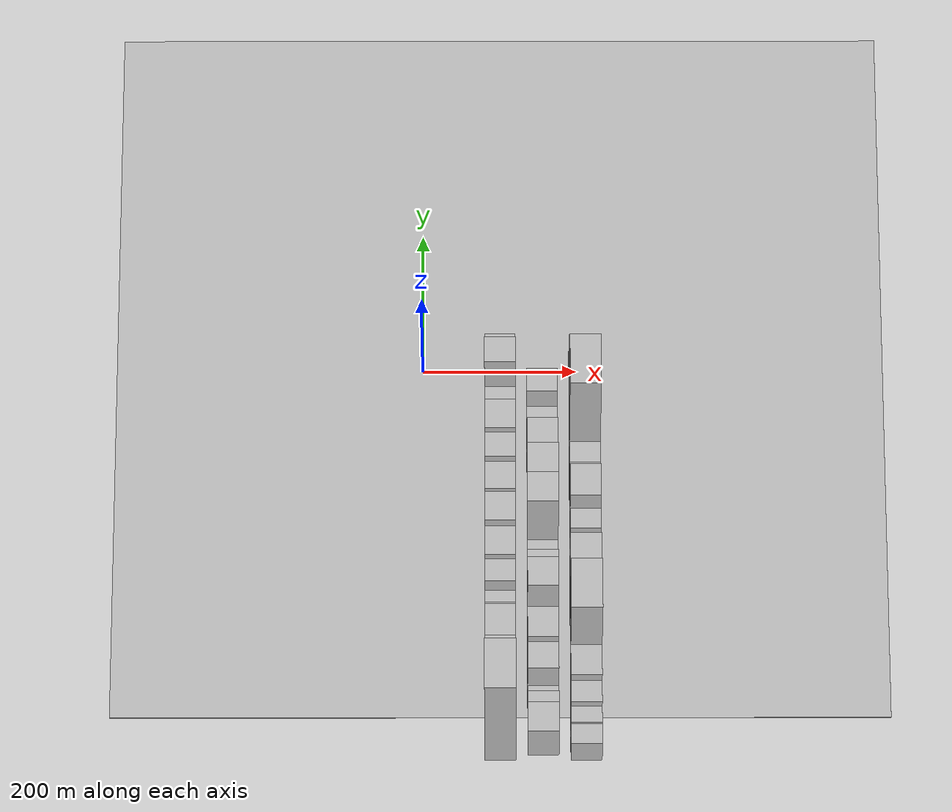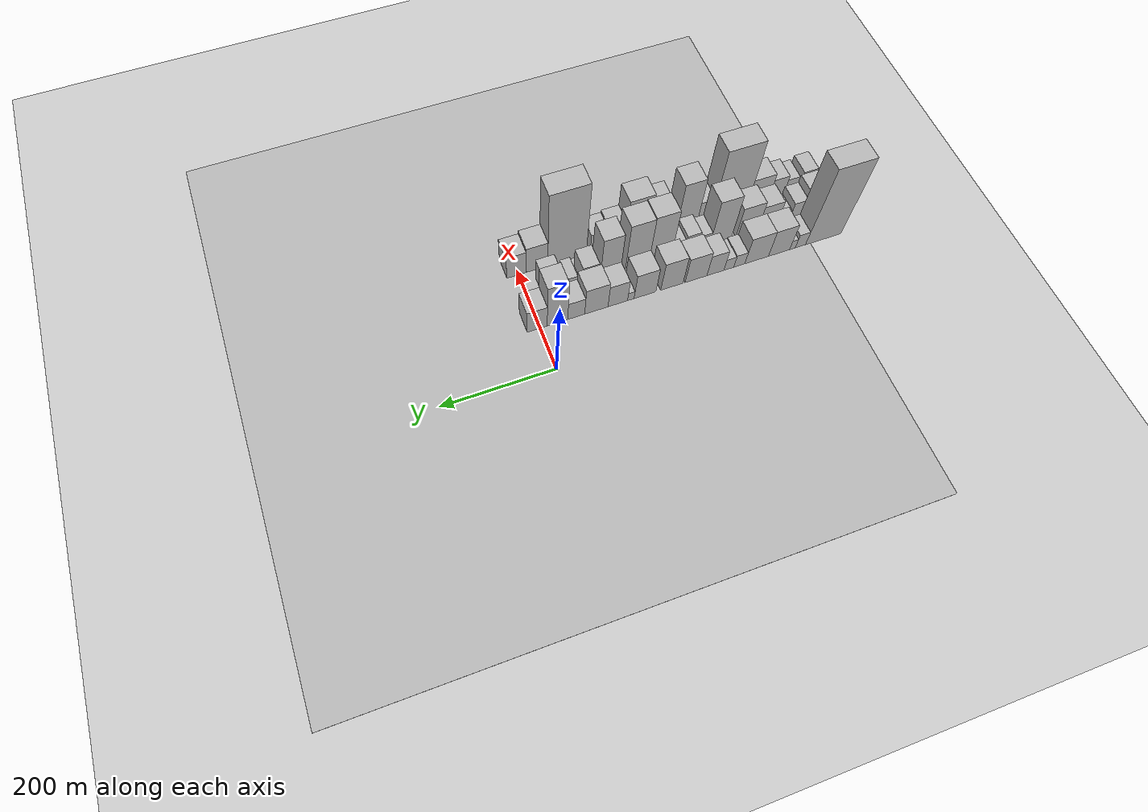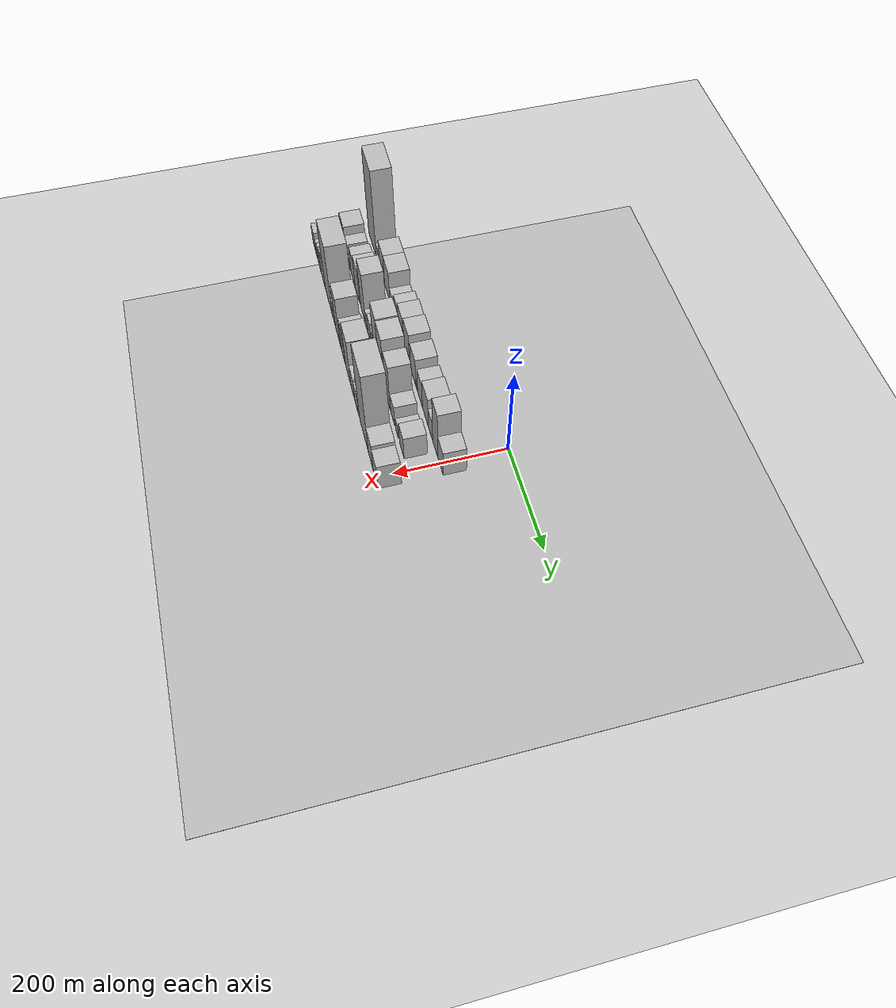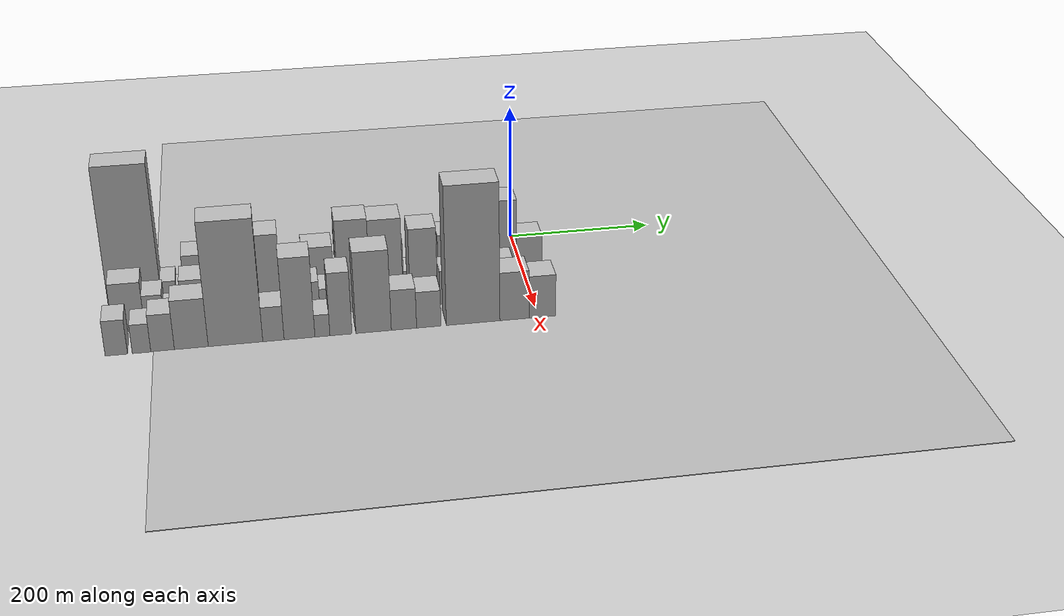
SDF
<sdf version="1.6">
 <world name="default">
  <include><name>ground_plane_1</name><uri>model://HANNAS_ground_plane</uri></include>
  <include>
   <name>ground_plane_2</name>
   <uri>model://HANNAS_ground_plane</uri>
   <pose>100 0 0  0 0 0</pose>
  </include>
  <model name="building_1">
   <static>1</static>
   <pose>100.0000 -525.1920 0 0.000000 0.000000 0.000000</pose>
   <link name="link">
    <pose>0 0 106.50 0 0 0</pose>
    <collision name="collision"><geometry><box><size>40.0000 69.6161 213.0000</size></box></geometry></collision>
    <visual name="visual">
     <cast_shadows>0</cast_shadows>
     <geometry><box><size>40.0000 69.6161 213.0000</size></box></geometry>
     <material>
      <script>
       <uri>model://HANNAS_wall/materials/scripts</uri>
       <uri>model://HANNAS_wall/materials/textures</uri>
       <name>vrc/HANNAS_wall</name>
      </script>
     </material>
    </visual>
   </link>
  </model>
  <model name="building_2">
   <static>1</static>
   <pose>100.0000 -480.3971 0 0.000000 0.000000 0.000000</pose>
   <link name="link">
    <pose>0 0 19.50 0 0 0</pose>
    <collision name="collision"><geometry><box><size>40.0000 19.9735 39.0000</size></box></geometry></collision>
    <visual name="visual">
     <cast_shadows>0</cast_shadows>
     <geometry><box><size>40.0000 19.9735 39.0000</size></box></geometry>
     <material>
      <script>
       <uri>model://HANNAS_wall/materials/scripts</uri>
       <uri>model://HANNAS_wall/materials/textures</uri>
       <name>vrc/HANNAS_wall</name>
      </script>
     </material>
    </visual>
   </link>
  </model>
  <model name="building_3">
   <static>1</static>
   <pose>100.0000 -464.9980 0 0.000000 0.000000 0.000000</pose>
   <link name="link">
    <pose>0 0 13.50 0 0 0</pose>
    <collision name="collision"><geometry><box><size>40.0000 10.8247 27.0000</size></box></geometry></collision>
    <visual name="visual">
     <cast_shadows>0</cast_shadows>
     <geometry><box><size>40.0000 10.8247 27.0000</size></box></geometry>
     <material>
      <script>
       <uri>model://HANNAS_wall/materials/scripts</uri>
       <uri>model://HANNAS_wall/materials/textures</uri>
       <name>vrc/HANNAS_wall</name>
      </script>
     </material>
    </visual>
   </link>
  </model>
  <model name="building_4">
   <static>1</static>
   <pose>100.0000 -439.0959 0 0.000000 0.000000 0.000000</pose>
   <link name="link">
    <pose>0 0 37.50 0 0 0</pose>
    <collision name="collision"><geometry><box><size>40.0000 40.9796 75.0000</size></box></geometry></collision>
    <visual name="visual">
     <cast_shadows>0</cast_shadows>
     <geometry><box><size>40.0000 40.9796 75.0000</size></box></geometry>
     <material>
      <script>
       <uri>model://HANNAS_wall/materials/scripts</uri>
       <uri>model://HANNAS_wall/materials/textures</uri>
       <name>vrc/HANNAS_wall</name>
      </script>
     </material>
    </visual>
   </link>
  </model>
  <model name="building_5">
   <static>1</static>
   <pose>100.0000 -396.1239 0 0.000000 0.000000 0.000000</pose>
   <link name="link">
    <pose>0 0 37.50 0 0 0</pose>
    <collision name="collision"><geometry><box><size>40.0000 44.9645 75.0000</size></box></geometry></collision>
    <visual name="visual">
     <cast_shadows>0</cast_shadows>
     <geometry><box><size>40.0000 44.9645 75.0000</size></box></geometry>
     <material>
      <script>
       <uri>model://HANNAS_wall/materials/scripts</uri>
       <uri>model://HANNAS_wall/materials/textures</uri>
       <name>vrc/HANNAS_wall</name>
      </script>
     </material>
    </visual>
   </link>
  </model>
  <model name="building_6">
   <static>1</static>
   <pose>100.0000 -363.2750 0 0.000000 0.000000 0.000000</pose>
   <link name="link">
    <pose>0 0 18.00 0 0 0</pose>
    <collision name="collision"><geometry><box><size>40.0000 20.7332 36.0000</size></box></geometry></collision>
    <visual name="visual">
     <cast_shadows>0</cast_shadows>
     <geometry><box><size>40.0000 20.7332 36.0000</size></box></geometry>
     <material>
      <script>
       <uri>model://HANNAS_wall/materials/scripts</uri>
       <uri>model://HANNAS_wall/materials/textures</uri>
       <name>vrc/HANNAS_wall</name>
      </script>
     </material>
    </visual>
   </link>
  </model>
  <model name="building_7">
   <static>1</static>
   <pose>100.0000 -343.6240 0 0.000000 0.000000 0.000000</pose>
   <link name="link">
    <pose>0 0 16.50 0 0 0</pose>
    <collision name="collision"><geometry><box><size>40.0000 18.5687 33.0000</size></box></geometry></collision>
    <visual name="visual">
     <cast_shadows>0</cast_shadows>
     <geometry><box><size>40.0000 18.5687 33.0000</size></box></geometry>
     <material>
      <script>
       <uri>model://HANNAS_wall/materials/scripts</uri>
       <uri>model://HANNAS_wall/materials/textures</uri>
       <name>vrc/HANNAS_wall</name>
      </script>
     </material>
    </visual>
   </link>
  </model>
  <model name="building_8">
   <static>1</static>
   <pose>100.0000 -318.3260 0 0.000000 0.000000 0.000000</pose>
   <link name="link">
    <pose>0 0 30.00 0 0 0</pose>
    <collision name="collision"><geometry><box><size>40.0000 32.0274 60.0000</size></box></geometry></collision>
    <visual name="visual">
     <cast_shadows>0</cast_shadows>
     <geometry><box><size>40.0000 32.0274 60.0000</size></box></geometry>
     <material>
      <script>
       <uri>model://HANNAS_wall/materials/scripts</uri>
       <uri>model://HANNAS_wall/materials/textures</uri>
       <name>vrc/HANNAS_wall</name>
      </script>
     </material>
    </visual>
   </link>
  </model>
  <model name="building_9">
   <static>1</static>
   <pose>100.0000 -281.9549 0 0.000000 0.000000 0.000000</pose>
   <link name="link">
    <pose>0 0 36.00 0 0 0</pose>
    <collision name="collision"><geometry><box><size>40.0000 40.7148 72.0000</size></box></geometry></collision>
    <visual name="visual">
     <cast_shadows>0</cast_shadows>
     <geometry><box><size>40.0000 40.7148 72.0000</size></box></geometry>
     <material>
      <script>
       <uri>model://HANNAS_wall/materials/scripts</uri>
       <uri>model://HANNAS_wall/materials/textures</uri>
       <name>vrc/HANNAS_wall</name>
      </script>
     </material>
    </visual>
   </link>
  </model>
  <model name="building_10">
   <static>1</static>
   <pose>100.0000 -237.0497 0 0.000000 0.000000 0.000000</pose>
   <link name="link">
    <pose>0 0 40.50 0 0 0</pose>
    <collision name="collision"><geometry><box><size>40.0000 41.0955 81.0000</size></box></geometry></collision>
    <visual name="visual">
     <cast_shadows>0</cast_shadows>
     <geometry><box><size>40.0000 41.0955 81.0000</size></box></geometry>
     <material>
      <script>
       <uri>model://HANNAS_wall/materials/scripts</uri>
       <uri>model://HANNAS_wall/materials/textures</uri>
       <name>vrc/HANNAS_wall</name>
      </script>
     </material>
    </visual>
   </link>
  </model>
  <model name="building_11">
   <static>1</static>
   <pose>100.0000 -187.5031 0 0.000000 0.000000 0.000000</pose>
   <link name="link">
    <pose>0 0 36.00 0 0 0</pose>
    <collision name="collision"><geometry><box><size>40.0000 39.9978 72.0000</size></box></geometry></collision>
    <visual name="visual">
     <cast_shadows>0</cast_shadows>
     <geometry><box><size>40.0000 39.9978 72.0000</size></box></geometry>
     <material>
      <script>
       <uri>model://HANNAS_wall/materials/scripts</uri>
       <uri>model://HANNAS_wall/materials/textures</uri>
       <name>vrc/HANNAS_wall</name>
      </script>
     </material>
    </visual>
   </link>
  </model>
  <model name="building_12">
   <static>1</static>
   <pose>100.0000 -161.5487 0 0.000000 0.000000 0.000000</pose>
   <link name="link">
    <pose>0 0 12.00 0 0 0</pose>
    <collision name="collision"><geometry><box><size>40.0000 11.9110 24.0000</size></box></geometry></collision>
    <visual name="visual">
     <cast_shadows>0</cast_shadows>
     <geometry><box><size>40.0000 11.9110 24.0000</size></box></geometry>
     <material>
      <script>
       <uri>model://HANNAS_wall/materials/scripts</uri>
       <uri>model://HANNAS_wall/materials/textures</uri>
       <name>vrc/HANNAS_wall</name>
      </script>
     </material>
    </visual>
   </link>
  </model>
  <model name="building_13">
   <static>1</static>
   <pose>100.0000 -137.8697 0 0.000000 0.000000 0.000000</pose>
   <link name="link">
    <pose>0 0 31.50 0 0 0</pose>
    <collision name="collision"><geometry><box><size>40.0000 35.4469 63.0000</size></box></geometry></collision>
    <visual name="visual">
     <cast_shadows>0</cast_shadows>
     <geometry><box><size>40.0000 35.4469 63.0000</size></box></geometry>
     <material>
      <script>
       <uri>model://HANNAS_wall/materials/scripts</uri>
       <uri>model://HANNAS_wall/materials/textures</uri>
       <name>vrc/HANNAS_wall</name>
      </script>
     </material>
    </visual>
   </link>
  </model>
  <model name="building_14">
   <static>1</static>
   <pose>100.0000 -99.2202 0 0.000000 0.000000 0.000000</pose>
   <link name="link">
    <pose>0 0 37.50 0 0 0</pose>
    <collision name="collision"><geometry><box><size>40.0000 41.8522 75.0000</size></box></geometry></collision>
    <visual name="visual">
     <cast_shadows>0</cast_shadows>
     <geometry><box><size>40.0000 41.8522 75.0000</size></box></geometry>
     <material>
      <script>
       <uri>model://HANNAS_wall/materials/scripts</uri>
       <uri>model://HANNAS_wall/materials/textures</uri>
       <name>vrc/HANNAS_wall</name>
      </script>
     </material>
    </visual>
   </link>
  </model>
  <model name="building_15">
   <static>1</static>
   <pose>100.0000 -63.1004 0 0.000000 0.000000 0.000000</pose>
   <link name="link">
    <pose>0 0 25.50 0 0 0</pose>
    <collision name="collision"><geometry><box><size>40.0000 30.3875 51.0000</size></box></geometry></collision>
    <visual name="visual">
     <cast_shadows>0</cast_shadows>
     <geometry><box><size>40.0000 30.3875 51.0000</size></box></geometry>
     <material>
      <script>
       <uri>model://HANNAS_wall/materials/scripts</uri>
       <uri>model://HANNAS_wall/materials/textures</uri>
       <name>vrc/HANNAS_wall</name>
      </script>
     </material>
    </visual>
   </link>
  </model>
  <model name="building_16">
   <static>1</static>
   <pose>100.0000 -29.7514 0 0.000000 0.000000 0.000000</pose>
   <link name="link">
    <pose>0 0 60.00 0 0 0</pose>
    <collision name="collision"><geometry><box><size>40.0000 36.3105 120.0000</size></box></geometry></collision>
    <visual name="visual">
     <cast_shadows>0</cast_shadows>
     <geometry><box><size>40.0000 36.3105 120.0000</size></box></geometry>
     <material>
      <script>
       <uri>model://HANNAS_wall/materials/scripts</uri>
       <uri>model://HANNAS_wall/materials/textures</uri>
       <name>vrc/HANNAS_wall</name>
      </script>
     </material>
    </visual>
   </link>
  </model>
  <model name="building_17">
   <static>1</static>
   <pose>100.0000 5.9926 0 0.000000 0.000000 0.000000</pose>
   <link name="link">
    <pose>0 0 31.50 0 0 0</pose>
    <collision name="collision"><geometry><box><size>40.0000 35.1775 63.0000</size></box></geometry></collision>
    <visual name="visual">
     <cast_shadows>0</cast_shadows>
     <geometry><box><size>40.0000 35.1775 63.0000</size></box></geometry>
     <material>
      <script>
       <uri>model://HANNAS_wall/materials/scripts</uri>
       <uri>model://HANNAS_wall/materials/textures</uri>
       <name>vrc/HANNAS_wall</name>
      </script>
     </material>
    </visual>
   </link>
  </model>
  <model name="building_34">
   <static>1</static>
   <pose>155.0000 -532.4079 0 0.000000 0.000000 0.000000</pose>
   <link name="link">
    <pose>0 0 36.00 0 0 0</pose>
    <collision name="collision"><geometry><box><size>40.0000 41.1843 72.0000</size></box></geometry></collision>
    <visual name="visual">
     <cast_shadows>0</cast_shadows>
     <geometry><box><size>40.0000 41.1843 72.0000</size></box></geometry>
     <material>
      <script>
       <uri>model://HANNAS_wall/materials/scripts</uri>
       <uri>model://HANNAS_wall/materials/textures</uri>
       <name>vrc/HANNAS_wall</name>
      </script>
     </material>
    </visual>
   </link>
  </model>
  <model name="building_35">
   <static>1</static>
   <pose>155.0000 -498.9402 0 0.000000 0.000000 0.000000</pose>
   <link name="link">
    <pose>0 0 25.50 0 0 0</pose>
    <collision name="collision"><geometry><box><size>40.0000 25.7511 51.0000</size></box></geometry></collision>
    <visual name="visual">
     <cast_shadows>0</cast_shadows>
     <geometry><box><size>40.0000 25.7511 51.0000</size></box></geometry>
     <material>
      <script>
       <uri>model://HANNAS_wall/materials/scripts</uri>
       <uri>model://HANNAS_wall/materials/textures</uri>
       <name>vrc/HANNAS_wall</name>
      </script>
     </material>
    </visual>
   </link>
  </model>
  <model name="building_36">
   <static>1</static>
   <pose>155.0000 -477.3509 0 0.000000 0.000000 0.000000</pose>
   <link name="link">
    <pose>0 0 15.00 0 0 0</pose>
    <collision name="collision"><geometry><box><size>40.0000 17.4274 30.0000</size></box></geometry></collision>
    <visual name="visual">
     <cast_shadows>0</cast_shadows>
     <geometry><box><size>40.0000 17.4274 30.0000</size></box></geometry>
     <material>
      <script>
       <uri>model://HANNAS_wall/materials/scripts</uri>
       <uri>model://HANNAS_wall/materials/textures</uri>
       <name>vrc/HANNAS_wall</name>
      </script>
     </material>
    </visual>
   </link>
  </model>
  <model name="building_37">
   <static>1</static>
   <pose>155.0000 -443.7646 0 0.000000 0.000000 0.000000</pose>
   <link name="link">
    <pose>0 0 34.50 0 0 0</pose>
    <collision name="collision"><geometry><box><size>40.0000 37.7451 69.0000</size></box></geometry></collision>
    <visual name="visual">
     <cast_shadows>0</cast_shadows>
     <geometry><box><size>40.0000 37.7451 69.0000</size></box></geometry>
     <material>
      <script>
       <uri>model://HANNAS_wall/materials/scripts</uri>
       <uri>model://HANNAS_wall/materials/textures</uri>
       <name>vrc/HANNAS_wall</name>
      </script>
     </material>
    </visual>
   </link>
  </model>
  <model name="building_38">
   <static>1</static>
   <pose>155.0000 -403.7173 0 0.000000 0.000000 0.000000</pose>
   <link name="link">
    <pose>0 0 42.00 0 0 0</pose>
    <collision name="collision"><geometry><box><size>40.0000 42.3496 84.0000</size></box></geometry></collision>
    <visual name="visual">
     <cast_shadows>0</cast_shadows>
     <geometry><box><size>40.0000 42.3496 84.0000</size></box></geometry>
     <material>
      <script>
       <uri>model://HANNAS_wall/materials/scripts</uri>
       <uri>model://HANNAS_wall/materials/textures</uri>
       <name>vrc/HANNAS_wall</name>
      </script>
     </material>
    </visual>
   </link>
  </model>
  <model name="building_39">
   <static>1</static>
   <pose>155.0000 -353.1470 0 0.000000 0.000000 0.000000</pose>
   <link name="link">
    <pose>0 0 63.00 0 0 0</pose>
    <collision name="collision"><geometry><box><size>40.0000 40.7909 126.0000</size></box></geometry></collision>
    <visual name="visual">
     <cast_shadows>0</cast_shadows>
     <geometry><box><size>40.0000 40.7909 126.0000</size></box></geometry>
     <material>
      <script>
       <uri>model://HANNAS_wall/materials/scripts</uri>
       <uri>model://HANNAS_wall/materials/textures</uri>
       <name>vrc/HANNAS_wall</name>
      </script>
     </material>
    </visual>
   </link>
  </model>
  <model name="building_40">
   <static>1</static>
   <pose>155.0000 -321.5371 0 0.000000 0.000000 0.000000</pose>
   <link name="link">
    <pose>0 0 19.50 0 0 0</pose>
    <collision name="collision"><geometry><box><size>40.0000 22.4290 39.0000</size></box></geometry></collision>
    <visual name="visual">
     <cast_shadows>0</cast_shadows>
     <geometry><box><size>40.0000 22.4290 39.0000</size></box></geometry>
     <material>
      <script>
       <uri>model://HANNAS_wall/materials/scripts</uri>
       <uri>model://HANNAS_wall/materials/textures</uri>
       <name>vrc/HANNAS_wall</name>
      </script>
     </material>
    </visual>
   </link>
  </model>
  <model name="building_41">
   <static>1</static>
   <pose>155.0000 -297.3063 0 0.000000 0.000000 0.000000</pose>
   <link name="link">
    <pose>0 0 25.50 0 0 0</pose>
    <collision name="collision"><geometry><box><size>40.0000 26.0325 51.0000</size></box></geometry></collision>
    <visual name="visual">
     <cast_shadows>0</cast_shadows>
     <geometry><box><size>40.0000 26.0325 51.0000</size></box></geometry>
     <material>
      <script>
       <uri>model://HANNAS_wall/materials/scripts</uri>
       <uri>model://HANNAS_wall/materials/textures</uri>
       <name>vrc/HANNAS_wall</name>
      </script>
     </material>
    </visual>
   </link>
  </model>
  <model name="building_42">
   <static>1</static>
   <pose>155.0000 -274.3556 0 0.000000 0.000000 0.000000</pose>
   <link name="link">
    <pose>0 0 19.50 0 0 0</pose>
    <collision name="collision"><geometry><box><size>40.0000 19.8689 39.0000</size></box></geometry></collision>
    <visual name="visual">
     <cast_shadows>0</cast_shadows>
     <geometry><box><size>40.0000 19.8689 39.0000</size></box></geometry>
     <material>
      <script>
       <uri>model://HANNAS_wall/materials/scripts</uri>
       <uri>model://HANNAS_wall/materials/textures</uri>
       <name>vrc/HANNAS_wall</name>
      </script>
     </material>
    </visual>
   </link>
  </model>
  <model name="building_43">
   <static>1</static>
   <pose>155.0000 -238.2974 0 0.000000 0.000000 0.000000</pose>
   <link name="link">
    <pose>0 0 69.00 0 0 0</pose>
    <collision name="collision"><geometry><box><size>40.0000 42.2475 138.0000</size></box></geometry></collision>
    <visual name="visual">
     <cast_shadows>0</cast_shadows>
     <geometry><box><size>40.0000 42.2475 138.0000</size></box></geometry>
     <material>
      <script>
       <uri>model://HANNAS_wall/materials/scripts</uri>
       <uri>model://HANNAS_wall/materials/textures</uri>
       <name>vrc/HANNAS_wall</name>
      </script>
     </material>
    </visual>
   </link>
  </model>
  <model name="building_44">
   <static>1</static>
   <pose>155.0000 -195.3362 0 0.000000 0.000000 0.000000</pose>
   <link name="link">
    <pose>0 0 67.50 0 0 0</pose>
    <collision name="collision"><geometry><box><size>40.0000 43.6750 135.0000</size></box></geometry></collision>
    <visual name="visual">
     <cast_shadows>0</cast_shadows>
     <geometry><box><size>40.0000 43.6750 135.0000</size></box></geometry>
     <material>
      <script>
       <uri>model://HANNAS_wall/materials/scripts</uri>
       <uri>model://HANNAS_wall/materials/textures</uri>
       <name>vrc/HANNAS_wall</name>
      </script>
     </material>
    </visual>
   </link>
  </model>
  <model name="building_45">
   <static>1</static>
   <pose>155.0000 -146.1272 0 0.000000 0.000000 0.000000</pose>
   <link name="link">
    <pose>0 0 58.50 0 0 0</pose>
    <collision name="collision"><geometry><box><size>40.0000 36.7431 117.0000</size></box></geometry></collision>
    <visual name="visual">
     <cast_shadows>0</cast_shadows>
     <geometry><box><size>40.0000 36.7431 117.0000</size></box></geometry>
     <material>
      <script>
       <uri>model://HANNAS_wall/materials/scripts</uri>
       <uri>model://HANNAS_wall/materials/textures</uri>
       <name>vrc/HANNAS_wall</name>
      </script>
     </material>
    </visual>
   </link>
  </model>
  <model name="building_46">
   <static>1</static>
   <pose>155.0000 -109.8792 0 0.000000 0.000000 0.000000</pose>
   <link name="link">
    <pose>0 0 25.50 0 0 0</pose>
    <collision name="collision"><geometry><box><size>40.0000 29.7531 51.0000</size></box></geometry></collision>
    <visual name="visual">
     <cast_shadows>0</cast_shadows>
     <geometry><box><size>40.0000 29.7531 51.0000</size></box></geometry>
     <material>
      <script>
       <uri>model://HANNAS_wall/materials/scripts</uri>
       <uri>model://HANNAS_wall/materials/textures</uri>
       <name>vrc/HANNAS_wall</name>
      </script>
     </material>
    </visual>
   </link>
  </model>
  <model name="building_47">
   <static>1</static>
   <pose>155.0000 -76.9913 0 0.000000 0.000000 0.000000</pose>
   <link name="link">
    <pose>0 0 16.50 0 0 0</pose>
    <collision name="collision"><geometry><box><size>40.0000 18.0227 33.0000</size></box></geometry></collision>
    <visual name="visual">
     <cast_shadows>0</cast_shadows>
     <geometry><box><size>40.0000 18.0227 33.0000</size></box></geometry>
     <material>
      <script>
       <uri>model://HANNAS_wall/materials/scripts</uri>
       <uri>model://HANNAS_wall/materials/textures</uri>
       <name>vrc/HANNAS_wall</name>
      </script>
     </material>
    </visual>
   </link>
  </model>
  <model name="building_48">
   <static>1</static>
   <pose>155.0000 -41.2828 0 0.000000 0.000000 0.000000</pose>
   <link name="link">
    <pose>0 0 28.50 0 0 0</pose>
    <collision name="collision"><geometry><box><size>40.0000 33.3941 57.0000</size></box></geometry></collision>
    <visual name="visual">
     <cast_shadows>0</cast_shadows>
     <geometry><box><size>40.0000 33.3941 57.0000</size></box></geometry>
     <material>
      <script>
       <uri>model://HANNAS_wall/materials/scripts</uri>
       <uri>model://HANNAS_wall/materials/textures</uri>
       <name>vrc/HANNAS_wall</name>
      </script>
     </material>
    </visual>
   </link>
  </model>
  <model name="building_67">
   <static>1</static>
   <pose>210.0000 -546.1017 0 0.000000 0.000000 0.000000</pose>
   <link name="link">
    <pose>0 0 25.50 0 0 0</pose>
    <collision name="collision"><geometry><box><size>40.0000 27.7967 51.0000</size></box></geometry></collision>
    <visual name="visual">
     <cast_shadows>0</cast_shadows>
     <geometry><box><size>40.0000 27.7967 51.0000</size></box></geometry>
     <material>
      <script>
       <uri>model://HANNAS_wall/materials/scripts</uri>
       <uri>model://HANNAS_wall/materials/textures</uri>
       <name>vrc/HANNAS_wall</name>
      </script>
     </material>
    </visual>
   </link>
  </model>
  <model name="building_68">
   <static>1</static>
   <pose>210.0000 -514.6424 0 0.000000 0.000000 0.000000</pose>
   <link name="link">
    <pose>0 0 21.00 0 0 0</pose>
    <collision name="collision"><geometry><box><size>40.0000 23.1217 42.0000</size></box></geometry></collision>
    <visual name="visual">
     <cast_shadows>0</cast_shadows>
     <geometry><box><size>40.0000 23.1217 42.0000</size></box></geometry>
     <material>
      <script>
       <uri>model://HANNAS_wall/materials/scripts</uri>
       <uri>model://HANNAS_wall/materials/textures</uri>
       <name>vrc/HANNAS_wall</name>
      </script>
     </material>
    </visual>
   </link>
  </model>
  <model name="building_69">
   <static>1</static>
   <pose>210.0000 -488.2738 0 0.000000 0.000000 0.000000</pose>
   <link name="link">
    <pose>0 0 27.00 0 0 0</pose>
    <collision name="collision"><geometry><box><size>40.0000 29.6155 54.0000</size></box></geometry></collision>
    <visual name="visual">
     <cast_shadows>0</cast_shadows>
     <geometry><box><size>40.0000 29.6155 54.0000</size></box></geometry>
     <material>
      <script>
       <uri>model://HANNAS_wall/materials/scripts</uri>
       <uri>model://HANNAS_wall/materials/textures</uri>
       <name>vrc/HANNAS_wall</name>
      </script>
     </material>
    </visual>
   </link>
  </model>
  <model name="building_70">
   <static>1</static>
   <pose>210.0000 -452.1437 0 0.000000 0.000000 0.000000</pose>
   <link name="link">
    <pose>0 0 36.00 0 0 0</pose>
    <collision name="collision"><geometry><box><size>40.0000 42.6448 72.0000</size></box></geometry></collision>
    <visual name="visual">
     <cast_shadows>0</cast_shadows>
     <geometry><box><size>40.0000 42.6448 72.0000</size></box></geometry>
     <material>
      <script>
       <uri>model://HANNAS_wall/materials/scripts</uri>
       <uri>model://HANNAS_wall/materials/textures</uri>
       <name>vrc/HANNAS_wall</name>
      </script>
     </material>
    </visual>
   </link>
  </model>
  <model name="building_71">
   <static>1</static>
   <pose>210.0000 -396.1901 0 0.000000 0.000000 0.000000</pose>
   <link name="link">
    <pose>0 0 90.00 0 0 0</pose>
    <collision name="collision"><geometry><box><size>40.0000 69.2623 180.0000</size></box></geometry></collision>
    <visual name="visual">
     <cast_shadows>0</cast_shadows>
     <geometry><box><size>40.0000 69.2623 180.0000</size></box></geometry>
     <material>
      <script>
       <uri>model://HANNAS_wall/materials/scripts</uri>
       <uri>model://HANNAS_wall/materials/textures</uri>
       <name>vrc/HANNAS_wall</name>
      </script>
     </material>
    </visual>
   </link>
  </model>
  <model name="building_72">
   <static>1</static>
   <pose>210.0000 -347.9184 0 0.000000 0.000000 0.000000</pose>
   <link name="link">
    <pose>0 0 25.50 0 0 0</pose>
    <collision name="collision"><geometry><box><size>40.0000 27.2810 51.0000</size></box></geometry></collision>
    <visual name="visual">
     <cast_shadows>0</cast_shadows>
     <geometry><box><size>40.0000 27.2810 51.0000</size></box></geometry>
     <material>
      <script>
       <uri>model://HANNAS_wall/materials/scripts</uri>
       <uri>model://HANNAS_wall/materials/textures</uri>
       <name>vrc/HANNAS_wall</name>
      </script>
     </material>
    </visual>
   </link>
  </model>
  <model name="building_73">
   <static>1</static>
   <pose>210.0000 -314.5011 0 0.000000 0.000000 0.000000</pose>
   <link name="link">
    <pose>0 0 60.00 0 0 0</pose>
    <collision name="collision"><geometry><box><size>40.0000 39.5536 120.0000</size></box></geometry></collision>
    <visual name="visual">
     <cast_shadows>0</cast_shadows>
     <geometry><box><size>40.0000 39.5536 120.0000</size></box></geometry>
     <material>
      <script>
       <uri>model://HANNAS_wall/materials/scripts</uri>
       <uri>model://HANNAS_wall/materials/textures</uri>
       <name>vrc/HANNAS_wall</name>
      </script>
     </material>
    </visual>
   </link>
  </model>
  <model name="building_74">
   <static>1</static>
   <pose>210.0000 -285.0549 0 0.000000 0.000000 0.000000</pose>
   <link name="link">
    <pose>0 0 16.50 0 0 0</pose>
    <collision name="collision"><geometry><box><size>40.0000 19.3388 33.0000</size></box></geometry></collision>
    <visual name="visual">
     <cast_shadows>0</cast_shadows>
     <geometry><box><size>40.0000 19.3388 33.0000</size></box></geometry>
     <material>
      <script>
       <uri>model://HANNAS_wall/materials/scripts</uri>
       <uri>model://HANNAS_wall/materials/textures</uri>
       <name>vrc/HANNAS_wall</name>
      </script>
     </material>
    </visual>
   </link>
  </model>
  <model name="building_75">
   <static>1</static>
   <pose>210.0000 -261.0944 0 0.000000 0.000000 0.000000</pose>
   <link name="link">
    <pose>0 0 46.50 0 0 0</pose>
    <collision name="collision"><geometry><box><size>40.0000 28.5822 93.0000</size></box></geometry></collision>
    <visual name="visual">
     <cast_shadows>0</cast_shadows>
     <geometry><box><size>40.0000 28.5822 93.0000</size></box></geometry>
     <material>
      <script>
       <uri>model://HANNAS_wall/materials/scripts</uri>
       <uri>model://HANNAS_wall/materials/textures</uri>
       <name>vrc/HANNAS_wall</name>
      </script>
     </material>
    </visual>
   </link>
  </model>
  <model name="building_76">
   <static>1</static>
   <pose>210.0000 -218.7060 0 0.000000 0.000000 0.000000</pose>
   <link name="link">
    <pose>0 0 60.00 0 0 0</pose>
    <collision name="collision"><geometry><box><size>40.0000 46.1944 120.0000</size></box></geometry></collision>
    <visual name="visual">
     <cast_shadows>0</cast_shadows>
     <geometry><box><size>40.0000 46.1944 120.0000</size></box></geometry>
     <material>
      <script>
       <uri>model://HANNAS_wall/materials/scripts</uri>
       <uri>model://HANNAS_wall/materials/textures</uri>
       <name>vrc/HANNAS_wall</name>
      </script>
     </material>
    </visual>
   </link>
  </model>
  <model name="building_77">
   <static>1</static>
   <pose>210.0000 -179.0960 0 0.000000 0.000000 0.000000</pose>
   <link name="link">
    <pose>0 0 30.00 0 0 0</pose>
    <collision name="collision"><geometry><box><size>40.0000 33.0256 60.0000</size></box></geometry></collision>
    <visual name="visual">
     <cast_shadows>0</cast_shadows>
     <geometry><box><size>40.0000 33.0256 60.0000</size></box></geometry>
     <material>
      <script>
       <uri>model://HANNAS_wall/materials/scripts</uri>
       <uri>model://HANNAS_wall/materials/textures</uri>
       <name>vrc/HANNAS_wall</name>
      </script>
     </material>
    </visual>
   </link>
  </model>
  <model name="building_78">
   <static>1</static>
   <pose>210.0000 -146.5357 0 0.000000 0.000000 0.000000</pose>
   <link name="link">
    <pose>0 0 27.00 0 0 0</pose>
    <collision name="collision"><geometry><box><size>40.0000 32.0950 54.0000</size></box></geometry></collision>
    <visual name="visual">
     <cast_shadows>0</cast_shadows>
     <geometry><box><size>40.0000 32.0950 54.0000</size></box></geometry>
     <material>
      <script>
       <uri>model://HANNAS_wall/materials/scripts</uri>
       <uri>model://HANNAS_wall/materials/textures</uri>
       <name>vrc/HANNAS_wall</name>
      </script>
     </material>
    </visual>
   </link>
  </model>
  <model name="building_79">
   <static>1</static>
   <pose>210.0000 -87.9999 0 0.000000 0.000000 0.000000</pose>
   <link name="link">
    <pose>0 0 102.00 0 0 0</pose>
    <collision name="collision"><geometry><box><size>40.0000 70.9766 204.0000</size></box></geometry></collision>
    <visual name="visual">
     <cast_shadows>0</cast_shadows>
     <geometry><box><size>40.0000 70.9766 204.0000</size></box></geometry>
     <material>
      <script>
       <uri>model://HANNAS_wall/materials/scripts</uri>
       <uri>model://HANNAS_wall/materials/textures</uri>
       <name>vrc/HANNAS_wall</name>
      </script>
     </material>
    </visual>
   </link>
  </model>
  <model name="building_80">
   <static>1</static>
   <pose>210.0000 -33.0815 0 0.000000 0.000000 0.000000</pose>
   <link name="link">
    <pose>0 0 36.00 0 0 0</pose>
    <collision name="collision"><geometry><box><size>40.0000 38.8601 72.0000</size></box></geometry></collision>
    <visual name="visual">
     <cast_shadows>0</cast_shadows>
     <geometry><box><size>40.0000 38.8601 72.0000</size></box></geometry>
     <material>
      <script>
       <uri>model://HANNAS_wall/materials/scripts</uri>
       <uri>model://HANNAS_wall/materials/textures</uri>
       <name>vrc/HANNAS_wall</name>
      </script>
     </material>
    </visual>
   </link>
  </model>
  <model name="building_81">
   <static>1</static>
   <pose>210.0000 4.1134 0 0.000000 0.000000 0.000000</pose>
   <link name="link">
    <pose>0 0 31.50 0 0 0</pose>
    <collision name="collision"><geometry><box><size>40.0000 35.5298 63.0000</size></box></geometry></collision>
    <visual name="visual">
     <cast_shadows>0</cast_shadows>
     <geometry><box><size>40.0000 35.5298 63.0000</size></box></geometry>
     <material>
      <script>
       <uri>model://HANNAS_wall/materials/scripts</uri>
       <uri>model://HANNAS_wall/materials/textures</uri>
       <name>vrc/HANNAS_wall</name>
      </script>
     </material>
    </visual>
   </link>
  </model>
 </world>
</sdf>
